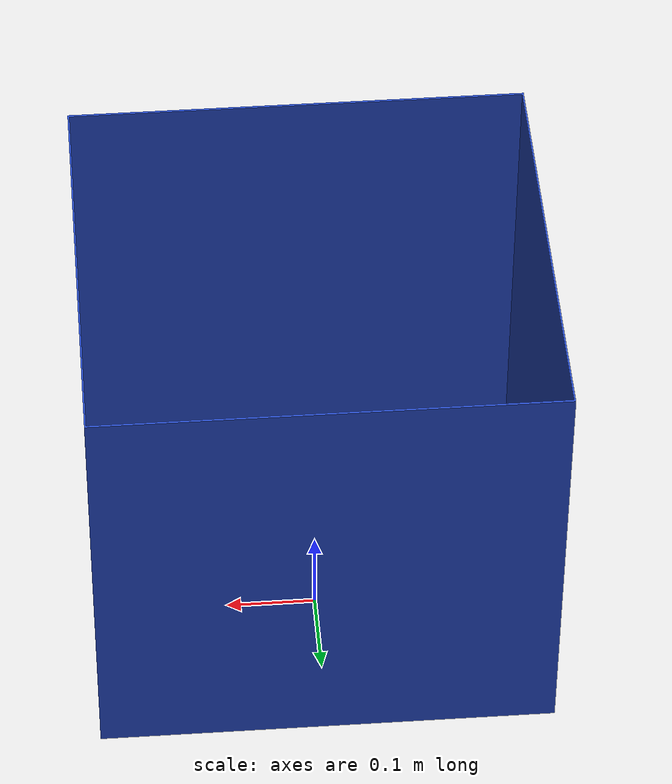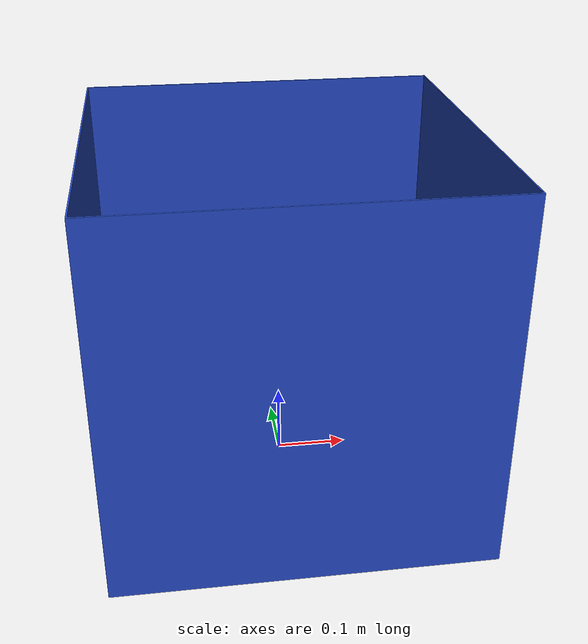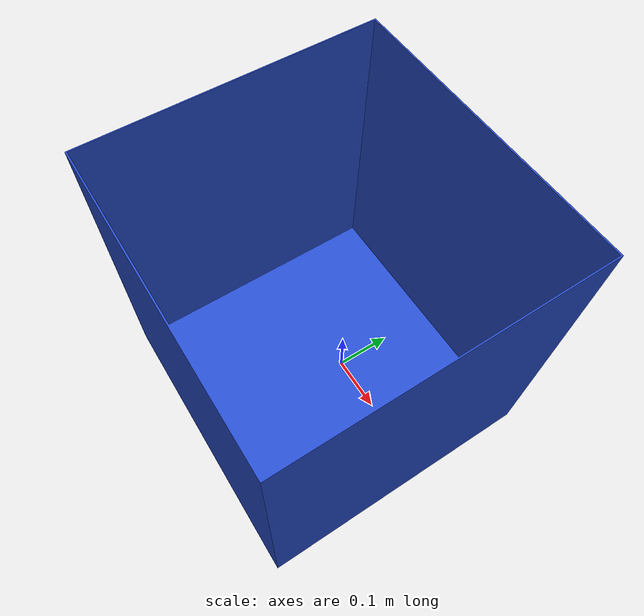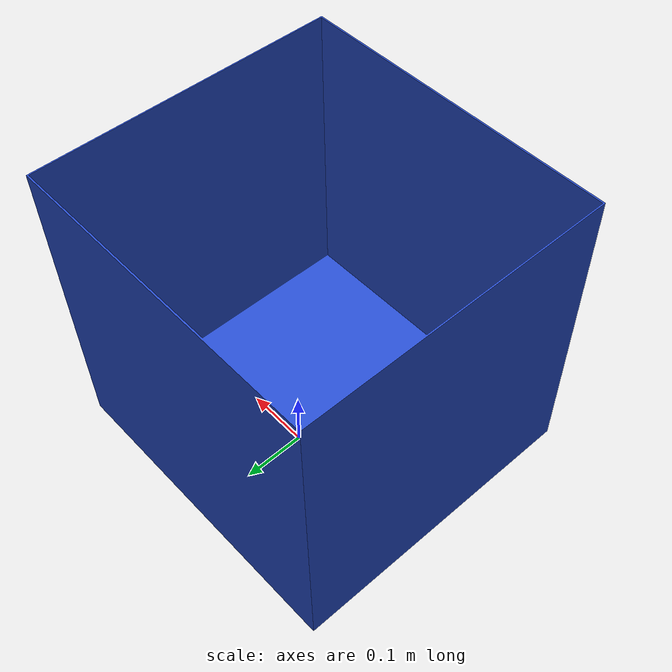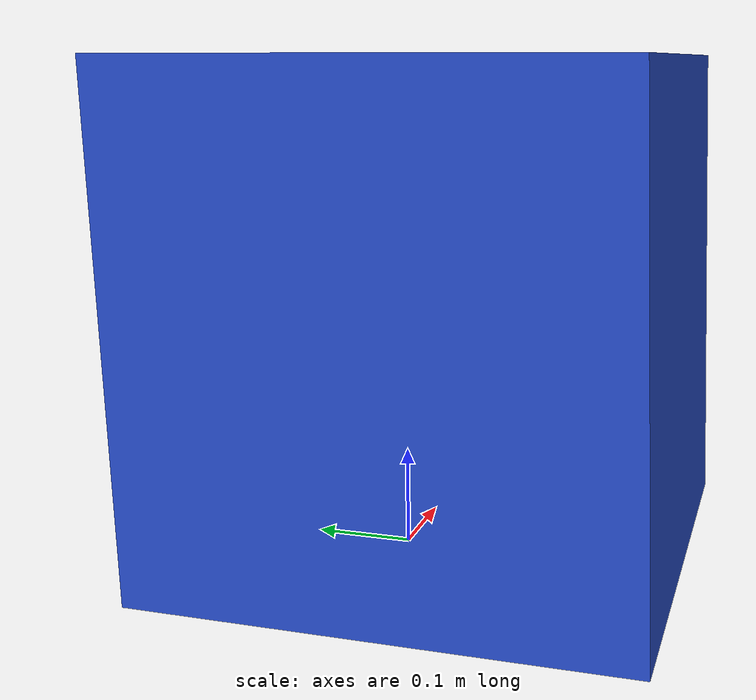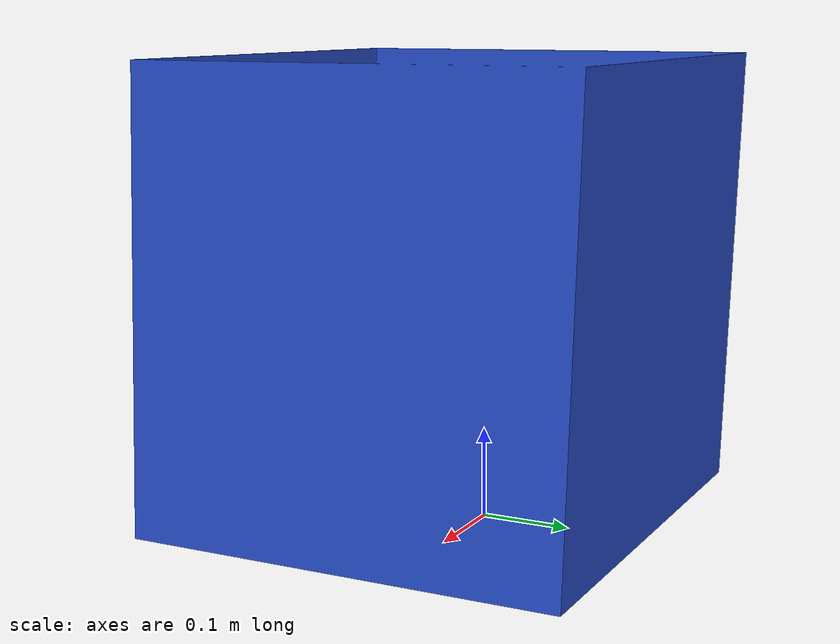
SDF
<?xml version="1.0" ?>
<sdf version="1.5">
  <model name="bin_2">

    <pose>0 0 0  0 0 0</pose>

    <static>true</static>
    <link name="link">
      <inertial>
        <mass>54.4311</mass>
        <inertia>
          <ixx>1</ixx>
          <ixy>0</ixy>
          <ixz>0</ixz>
          <iyy>1</iyy>
          <iyz>0</iyz>
          <izz>1</izz>
        </inertia>
      </inertial>

      <collision name="collision">
	    <pose>0 0 0  0 0 0</pose>
        <geometry>
          <mesh>
            <uri>model://bin_2/meshes/bin_2.stl</uri>
          </mesh>
        </geometry>
      </collision>

      <visual name="visual">
        <geometry>
          <mesh>
            <uri>model://bin_2/meshes/bin_2.stl</uri>
          </mesh>
        </geometry>
        <material>
           <script>
  <name>Gazebo/Blue</name>
  </script>
        </material>
      </visual>
    </link>
  </model>
</sdf>
